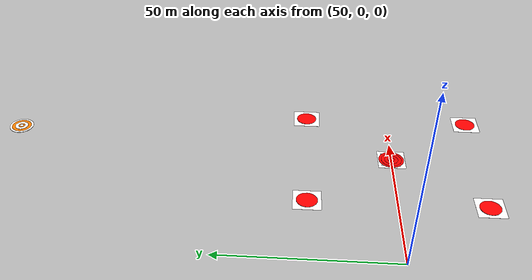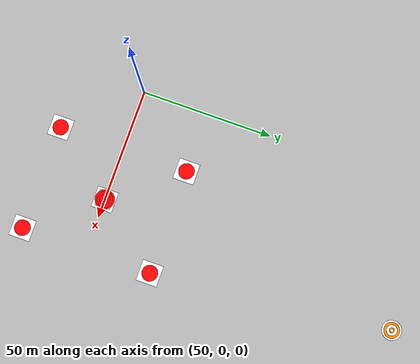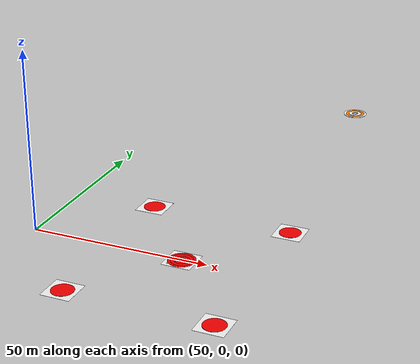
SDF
<sdf version='1.10'>
  <world name='iris_runway'>
    <physics name='1ms' type='ignore'>
      <max_step_size>0.001</max_step_size>
      <real_time_factor>1</real_time_factor>
      <real_time_update_rate>1000</real_time_update_rate>
    </physics>
    <plugin name='gz::sim::systems::Physics' filename='gz-sim-physics-system'/>
    <plugin name='gz::sim::systems::Sensors' filename='gz-sim-sensors-system'>
      <render_engine>ogre2</render_engine>
    </plugin>
    <plugin name='gz::sim::systems::UserCommands' filename='gz-sim-user-commands-system'/>
    <plugin name='gz::sim::systems::SceneBroadcaster' filename='gz-sim-scene-broadcaster-system'/>
    <plugin name='gz::sim::systems::Imu' filename='gz-sim-imu-system'/>
    <plugin name='gz::sim::systems::NavSat' filename='gz-sim-navsat-system'/>
    <scene>
      <ambient>1 1 1 1</ambient>
      <background>0.8 0.8 0.8 1</background>
      <sky/>
      <shadows>true</shadows>
    </scene>
    <spherical_coordinates>
      <latitude_deg>-35.363261999999999</latitude_deg>
      <longitude_deg>149.16523699999999</longitude_deg>
      <elevation>584</elevation>
      <heading_deg>0</heading_deg>
      <surface_model>EARTH_WGS84</surface_model>
    </spherical_coordinates>
    <gravity>0 0 -9.8</gravity>
    <magnetic_field>5.5645e-06 2.28758e-05 -4.23884e-05</magnetic_field>
    <atmosphere type='adiabatic'/>

    <model name="helipad">
      <link name="background_link">
        <!-- White square background -->
        <visual name="background_visual_H1_square">
          <geometry>
            <box>
              <size>8 8 0.01</size> <!-- Slightly larger than the circle -->
            </box>
          </geometry>
          <material>
            <ambient>1 1 1 1</ambient> <!-- White color -->
            <diffuse>1 1 1 1</diffuse> <!-- White color -->
            <specular>0 0 0 1</specular>
            <emissive>0 0 0 0</emissive>
          </material>
          <pose>93 0 0 0 0 0</pose>
        </visual>

        <!-- Red circle -->
        <visual name="background_visual_H1">
          <geometry>
            <cylinder>
              <radius>3.7</radius>
              <length>0.1</length>
            </cylinder>
          </geometry>
          <material>
            <ambient>1 0 0 1</ambient>
            <diffuse>1 0 0 1</diffuse>
            <specular>0 0 0 1</specular>
            <emissive>0 0 0 0</emissive>
          </material>
          <pose>93 0 0 0 0 0</pose>
        </visual>
      </link>

      <link name="h_letter">
        <!-- White square background for the red circle -->
        <visual name="h_letter_visual_11_square">
          <geometry>
            <box>
              <size>6 6 0.01</size> <!-- Slightly larger than the circle -->
            </box>
          </geometry>
          <material>
            <ambient>1 1 1 1</ambient> <!-- White color -->
            <diffuse>1 1 1 1</diffuse> <!-- White color -->
            <specular>0 0 0 1</specular>
            <emissive>0 0 0 0</emissive>
          </material>
          <pose>93 0 0 0 0 0</pose>
        </visual>

        <!-- Red circle -->
        <visual name="h_letter_visual_11">
          <geometry>
            <cylinder>
              <radius>3</radius>
              <length>0.12</length>
            </cylinder>
          </geometry>
          <material>
            <ambient>1 0 0 1</ambient>
            <diffuse>1 0 0 1</diffuse>
            <specular>0 0 0 1</specular>
            <emissive>0 0 0 0</emissive>
          </material>
          <pose>93 0 0 0 0 0</pose>
        </visual>

        <!-- Inner Red extra -->
        <visual name="h_letter_visual_12">
          <geometry>
            <cylinder>
              <radius>2</radius>
              <length>0.15</length>
            </cylinder>
          </geometry>
          <material>
            <ambient>1 0 0 1</ambient>
            <diffuse>1 0 0 1</diffuse>
            <specular>0 0 0 1</specular>
            <emissive>0 0 0 0</emissive>
          </material>
          <pose>93 0 0 0 0 0</pose>
        </visual>

        <!-- Inner red extra -->
        <visual name="h_letter_visual_13">
          <geometry>
            <cylinder>
              <radius>1</radius>
              <length>0.15</length>
            </cylinder>
          </geometry>
          <material>
            <ambient>1 0 0 1</ambient>
            <diffuse>1 0 0 1</diffuse>
            <specular>0 0 0 1</specular>
            <emissive>0 0 0 0</emissive>
          </material>
          <pose>93 0 0.05 0 0 0</pose>
        </visual>

        <!-- Additional white square background and red circle -->
        <visual name="h_letter_visual_78_square">
          <geometry>
            <box>
              <size>8 8 0.01</size> <!-- Slightly larger than the circle -->
            </box>
          </geometry>
          <material>
            <ambient>1 1 1 1</ambient> <!-- White color -->
            <diffuse>1 1 1 1</diffuse> <!-- White color -->
            <specular>0 0 0 1</specular>
            <emissive>0 0 0 0</emissive>
          </material>
          <pose>113 25 0 0 0 0</pose>
        </visual>

        <visual name="h_letter_visual_78">
          <geometry>
            <cylinder>
              <radius>3</radius>
              <length>0.12</length>
            </cylinder>
          </geometry>
          <material>
            <ambient>1 0 0 1</ambient>
            <diffuse>1 0 0 1</diffuse>
            <specular>0 0 0 1</specular>
            <emissive>0 0 0 0</emissive>
          </material>
          <pose>113 25 0 0 0 0</pose>
        </visual>

        <!-- Repeat the pattern for each of the red circles with white square backgrounds -->

        <visual name="h_letter_visual_79_square">
          <geometry>
            <box>
              <size>8 8 0.01</size>
            </box>
          </geometry>
          <material>
            <ambient>1 1 1 1</ambient>
            <diffuse>1 1 1 1</diffuse>
            <specular>0 0 0 1</specular>
            <emissive>0 0 0 0</emissive>
          </material>
          <pose>113 -25 0 0 0 0</pose>
        </visual>

        <visual name="h_letter_visual_79">
          <geometry>
            <cylinder>
              <radius>3</radius>
              <length>0.12</length>
            </cylinder>
          </geometry>
          <material>
            <ambient>1 0 0 1</ambient>
            <diffuse>1 0 0 1</diffuse>
            <specular>0 0 0 1</specular>
            <emissive>0 0 0 0</emissive>
          </material>
          <pose>113 -25 0 0 0 0</pose>
        </visual>

        <visual name="h_letter_visual_80_square">
          <geometry>
            <box>
              <size>8 8 0.01</size>
            </box>
          </geometry>
          <material>
            <ambient>1 1 1 1</ambient>
            <diffuse>1 1 1 1</diffuse>
            <specular>0 0 0 1</specular>
            <emissive>0 0 0 0</emissive>
          </material>
          <pose>73 -25 0 0 0 0</pose>
        </visual>

        <visual name="h_letter_visual_80">
          <geometry>
            <cylinder>
              <radius>3</radius>
              <length>0.12</length>
            </cylinder>
          </geometry>
          <material>
            <ambient>1 0 0 1</ambient>
            <diffuse>1 0 0 1</diffuse>
            <specular>0 0 0 1</specular>
            <emissive>0 0 0 0</emissive>
          </material>
          <pose>73 -25 0 0 0 0</pose>
        </visual>

        <visual name="h_letter_visual_81_square">
          <geometry>
            <box>
              <size>8 8 0.01</size>
            </box>
          </geometry>
          <material>
            <ambient>1 1 1 1</ambient>
            <diffuse>1 1 1 1</diffuse>
            <specular>0 0 0 1</specular>
            <emissive>0 0 0 0</emissive>
          </material>
          <pose>73 25 0 0 0 0</pose>
        </visual>

        <visual name="h_letter_visual_81">
          <geometry>
            <cylinder>
              <radius>3</radius>
              <length>0.12</length>
            </cylinder>
          </geometry>
          <material>
            <ambient>1 0 0 1</ambient>
            <diffuse>1 0 0 1</diffuse>
            <specular>0 0 0 1</specular>
            <emissive>0 0 0 0</emissive>
          </material>
          <pose>73 25 0 0 0 0</pose>
        </visual>
        <visual name="h_letter_visual_113">
          <geometry>
            <cylinder>
              <radius>0.6</radius>
              <length>0.19</length>
            </cylinder>
          </geometry>
          <material>
            <ambient>1 1 1 1</ambient>
            <diffuse>1 1 1 1</diffuse>
            <specular>0 0 0 1</specular>
            <emissive>0 0 0 0</emissive>
          </material>
          <pose>103 115 0.05 0 0 0</pose>
        </visual>
        <visual name="h_letter_visual_146">
          <geometry>
            <cylinder>
              <radius>1</radius>
              <length>0.17</length>
            </cylinder>
          </geometry>
          <material>
            <ambient>1 0.5 0 1</ambient>
            <diffuse>1 0.5 0 1</diffuse>
            <specular>0 0 0 1</specular>
            <emissive>0 0 0 0</emissive>
          </material>
          <pose>103 115 0.05 0 0 0</pose>
        </visual>
        <visual name="h_letter_visual_65">
          <geometry>
            <cylinder>
              <radius>2</radius>
              <length>0.15</length>
            </cylinder>
          </geometry>
          <material>
            <ambient>1 1 1 1</ambient>
            <diffuse>1 1 1 1</diffuse>
            <specular>0 0 0 1</specular>
            <emissive>0 0 0 0</emissive>
          </material>
          <pose>103 115 0.05 0 0 0</pose>
        </visual>
        <visual name="h_letter_visual_18">
          <geometry>
            <cylinder>
              <radius>3</radius>
              <length>0.12</length>
            </cylinder>
          </geometry>
          <material>
            <ambient>1 0.5 0 1</ambient>
            <diffuse>1 0.5 0 1</diffuse>
            <specular>0 0 0 1</specular>
            <emissive>0 0 0 0</emissive>
          </material>
          <pose>103 115 0 0 0 0</pose>
        </visual>
        <visual name="h_letter_visual_71">
          <geometry>
            <cylinder>
              <radius>3.7</radius>
              <length>0.1</length>
            </cylinder>
          </geometry>

      <material>
	<ambient>1 1 1 1</ambient> <!-- White color -->
	<diffuse>1 1 1 1</diffuse> <!-- White color -->
	<specular>0 0 0 1</specular>
	<emissive>0 0 0 0</emissive>
      </material>
      <pose>103 115 0 0 0 0</pose> <!-- Adjust pose to align with bottom -->
    </visual>
      </link>
    </model>
  </world>
</sdf>
